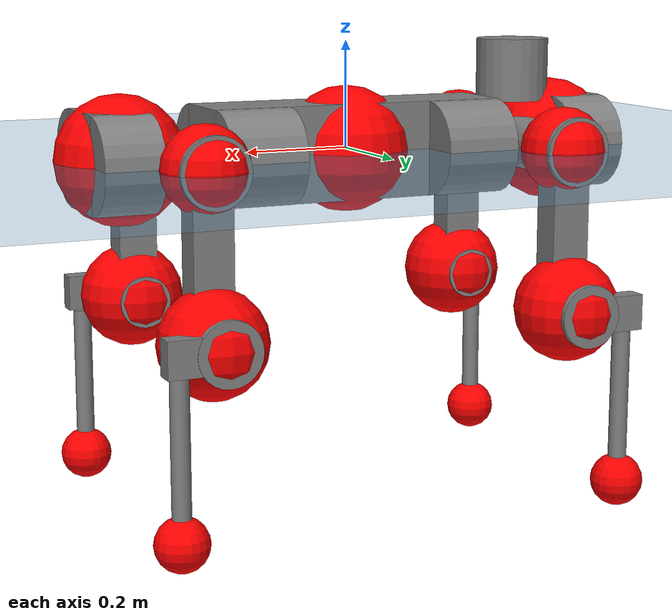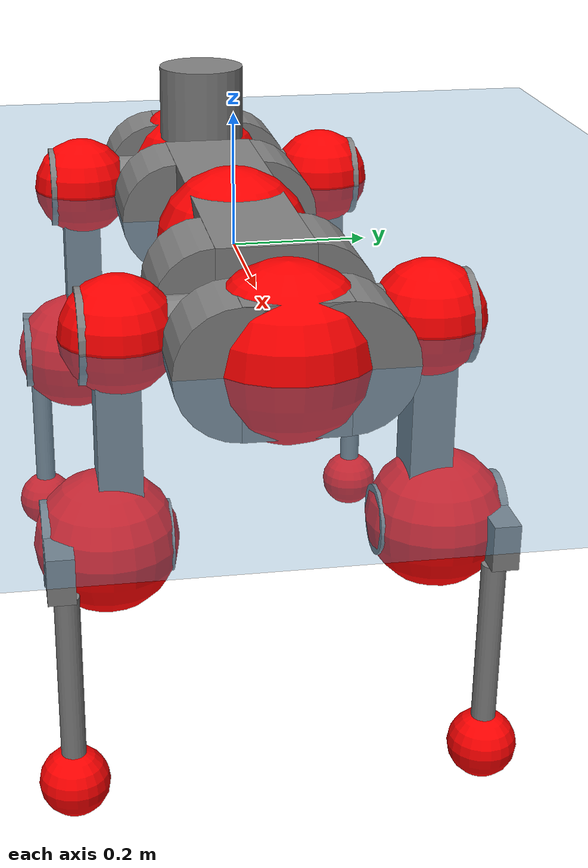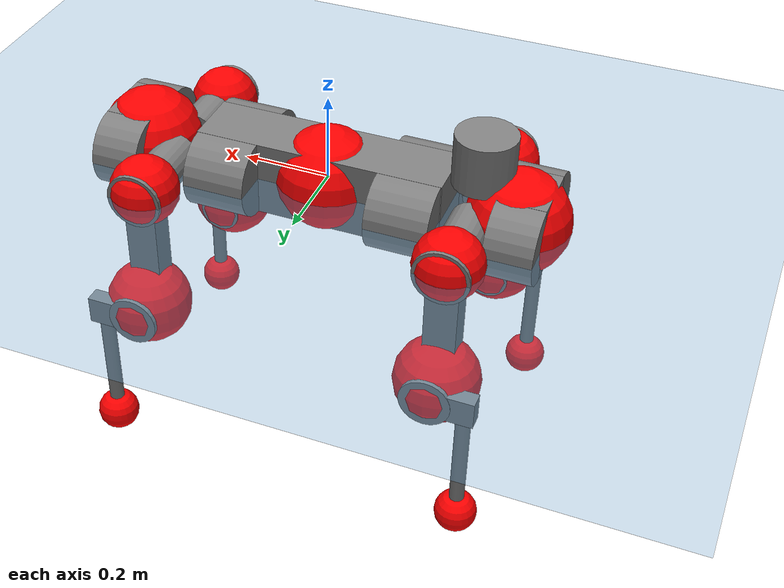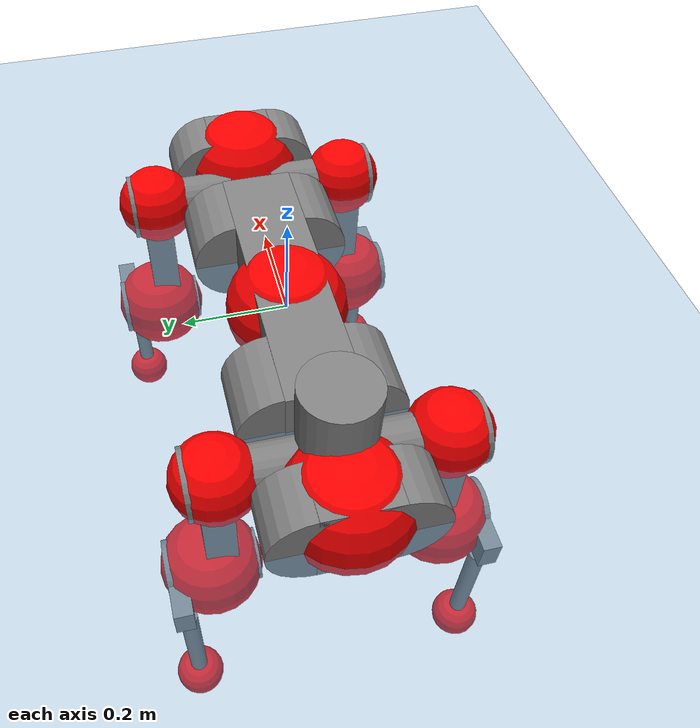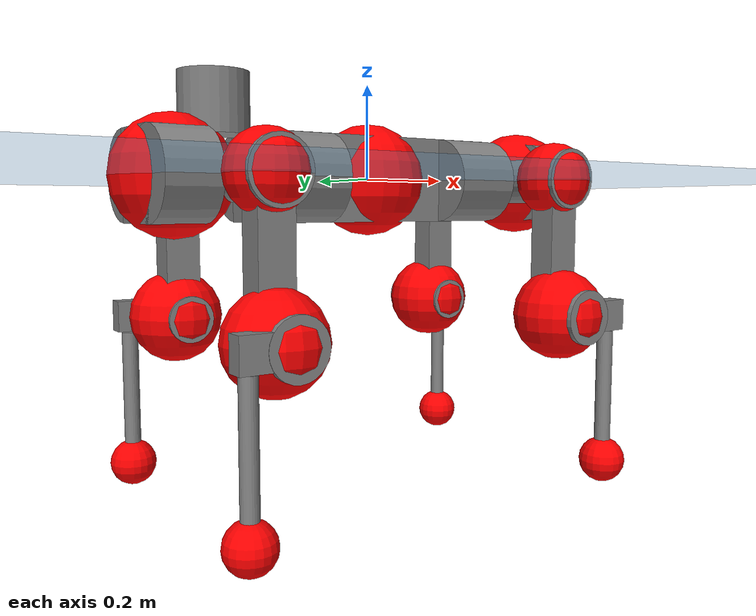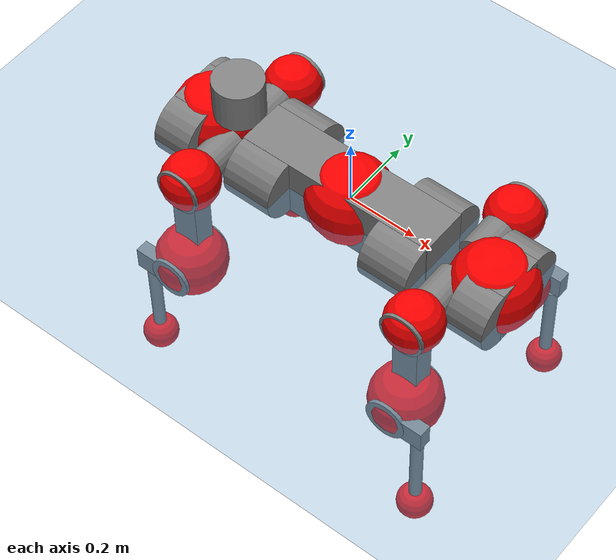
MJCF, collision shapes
<mujoco model="anymal_c">
  <compiler angle="radian" assetdir="assets" balanceinertia="true" inertiafromgeom="false"/>

  <option timestep="0.005" density="1.2" viscosity="2e-05"/>

  <size nkey="1"/>

  <visual>
    <quality shadowsize="8192"/>
    <map shadowclip="0.5"/>
  </visual>

  <default>
    <default class="/">
      <material specular="0" shininess="0.25"/>
      <geom contype="0" conaffinity="0" group="1" solref="-1000 -80"/>
      <site size="0.01 0.005 0.005" group="5"/>
      <general forcelimited="true" forcerange="-80 80" biastype="affine" gainprm="80" biasprm="0 -80 -2"/>
      <default class="anymal_c">
        <joint armature="0.01" damping="0.01" frictionloss="0.1"/>
        <default class="visual">
          <geom type="mesh" group="2"/>
          <default class="visual_zflip"/>
        </default>
        <default class="collision">
          <geom type="cylinder" group="3"/>
          <default class="foot">
            <geom size="0.03 0 0" type="sphere" condim="6" priority="1" friction="0.8 0.02 0.01" solimp="0.015 1 0.03"/>
          </default>
        </default>
      </default>
      <default class="reward_collision_sphere">
        <geom group="5" rgba="1 0 0 1"/>
      </default>
    </default>
  </default>

  <asset>
    <texture type="skybox" colorspace="auto" name="//unnamed_texture_0" builtin="gradient" rgb1="0.95 0.95 0.95" rgb2="0.95 0.95 0.95" width="100" height="600"/>
    <texture type="2d" colorspace="auto" name="texplane" builtin="checker" rgb1="0.345 0.575 0.748" rgb2="0.345 0.575 0.748" markrgb="1 1 1" width="512" height="512"/>
    <texture type="2d" colorspace="linear" name="base" file="base.png"/>
    <texture type="2d" colorspace="linear" name="top_shell" file="top_shell.png"/>
    <texture type="2d" colorspace="linear" name="bottom_shell" file="bottom_shell.png"/>
    <texture type="2d" colorspace="linear" name="remote" file="remote.png"/>
    <texture type="2d" colorspace="linear" name="hatch" file="hatch.png"/>
    <texture type="2d" colorspace="linear" name="handle" file="handle.png"/>
    <texture type="2d" colorspace="linear" name="face" file="face.png"/>
    <texture type="2d" colorspace="linear" name="battery" file="battery.png"/>
    <texture type="2d" colorspace="linear" name="lidar_cage" file="lidar_cage.png"/>
    <texture type="2d" colorspace="linear" name="depth_camera" file="depth_camera.png"/>
    <texture type="2d" colorspace="linear" name="wide_angle_camera" file="wide_angle_camera.png"/>
    <texture type="2d" colorspace="linear" name="lidar" file="lidar.png"/>
    <texture type="2d" colorspace="linear" name="drive" file="drive.png"/>
    <texture type="2d" colorspace="linear" name="hip_l" file="hip_l.png"/>
    <texture type="2d" colorspace="linear" name="shank_l" file="shank_l.png"/>
    <texture type="2d" colorspace="linear" name="foot" file="foot.png"/>
    <texture type="2d" colorspace="linear" name="thigh" file="thigh.png"/>
    <texture type="2d" colorspace="linear" name="shank_r" file="shank_r.png"/>
    <texture type="2d" colorspace="linear" name="hip_r" file="hip_r.png"/>
    <material name="MatPlane" class="/" texture="texplane" texuniform="true" texrepeat="2 2" specular="0.9" shininess="0.5"/>
    <material name="black_plastic" class="/" rgba="0.007 0.007 0.007 1"/>
    <material name="green" class="/" rgba="0.052 0.178 0.033 1"/>
    <material name="red" class="/" rgba="0.178 0.006 0.005 1"/>
    <material name="yellow" class="/" rgba="0.178 0.119 0.006 1"/>
    <material name="lwl" class="/" rgba="0.8 0.8 0.8 1"/>
    <material name="base" class="/" texture="base"/>
    <material name="top_shell" class="/" texture="top_shell"/>
    <material name="bottom_shell" class="/" texture="bottom_shell"/>
    <material name="hip_l" class="/" texture="hip_l"/>
    <material name="thigh" class="/" texture="thigh"/>
    <material name="shank_l" class="/" texture="shank_l"/>
    <material name="foot" class="/" texture="foot"/>
    <material name="hip_r" class="/" texture="hip_r"/>
    <material name="shank" class="/" texture="shank_r"/>
    <material name="hatch" class="/" texture="hatch"/>
    <material name="remote" class="/" texture="remote"/>
    <material name="handle" class="/" texture="handle"/>
    <material name="face" class="/" texture="face"/>
    <material name="depth_camera" class="/" texture="depth_camera"/>
    <material name="wide_angle_camera" class="/" texture="wide_angle_camera"/>
    <material name="battery" class="/" texture="battery"/>
    <material name="lidar_cage" class="/" texture="lidar_cage"/>
    <material name="lidar" class="/" texture="lidar"/>
    <material name="drive" class="/" texture="drive"/>
    <mesh name="base_0" class="/" file="base_0.obj"/>
    <mesh name="base_1" class="/" file="base_1.obj"/>
    <mesh name="base_2" class="/" file="base_2.obj"/>
    <mesh name="base_3" class="/" file="base_3.obj"/>
    <mesh name="base_4" class="/" file="base_4.obj"/>
    <mesh name="base_5" class="/" file="base_5.obj"/>
    <mesh name="top_shell" class="/" file="top_shell.obj"/>
    <mesh name="bottom_shell" class="/" file="bottom_shell.obj"/>
    <mesh name="remote" class="/" file="remote.obj"/>
    <mesh name="handle" class="/" file="handle.obj"/>
    <mesh name="face" class="/" file="face.obj"/>
    <mesh name="wide_angle_camera" class="/" file="wide_angle_camera.obj"/>
    <mesh name="depth_camera" class="/" file="depth_camera.obj"/>
    <mesh name="battery" class="/" file="battery.obj"/>
    <mesh name="lidar_cage" class="/" file="lidar_cage.obj"/>
    <mesh name="lidar" class="/" file="lidar.obj"/>
    <mesh name="drive" class="/" file="drive.obj"/>
    <mesh name="hip_l" class="/" file="hip_l.obj"/>
    <mesh name="thigh" class="/" file="thigh.obj"/>
    <mesh name="shank_l" class="/" file="shank_l.obj"/>
    <mesh name="foot" class="/" file="foot.obj"/>
    <mesh name="hip_r" class="/" file="hip_r.obj"/>
    <mesh name="hatch" class="/" file="hatch.obj"/>
    <mesh name="shank_r" class="/" file="shank_r.obj"/>
  </asset>

  <worldbody>
    <geom name="floor" class="/" size="100 100 0.125" type="plane" group="0" material="MatPlane"/>
    <light name="toplight_shadow" class="/" pos="0 0 5" dir="0.0990148 0.0990148 -0.990148" type="directional" ambient="0.04 0.04 0.04" diffuse="0.55 0.55 0.55" specular="0.12 0.12 0.12"/>
    <light name="toplight_fill" class="/" pos="0 0 5" dir="0.0990148 0.0990148 -0.990148" type="directional" castshadow="false" ambient="0.04 0.04 0.04" diffuse="0.3 0.3 0.3" specular="0.08 0.08 0.08"/>
    <body name="trunk" childclass="anymal_c" pos="0.000402434 0.000169645 -0.00117058" quat="1 9.97766e-05 -0.000343829 -0.000155422">
      <inertial pos="0.00209337 -0.000173249 0.0529485" quat="0.500347 0.497663 0.499921 0.502059" mass="18.9457" diaginertia="0.583105 0.484037 0.268273"/>
      <joint name="//unnamed_joint_0" type="free" armature="0" damping="0" frictionloss="0"/>
      <geom name="//unnamed_geom_1" class="visual" material="green" mesh="base_0"/>
      <geom name="//unnamed_geom_2" class="visual" material="yellow" mesh="base_1"/>
      <geom name="//unnamed_geom_3" class="visual" material="red" mesh="base_2"/>
      <geom name="//unnamed_geom_4" class="visual" material="black_plastic" mesh="base_3"/>
      <geom name="//unnamed_geom_5" class="visual" material="lwl" mesh="base_4"/>
      <geom name="//unnamed_geom_6" class="visual" material="base" mesh="base_5"/>
      <geom name="trunk_1" class="collision" size="0.286989 0.0692732 0.0890655" type="box"/>
      <geom name="trunk_2" class="collision" size="0.0890655 0.0717472" pos="0.213056 0.0664043 0" quat="0.707107 0 0.707107 0"/>
      <geom name="trunk_3" class="collision" size="0.0890655 0.0717472" pos="-0.213056 0.0664043 0" quat="0.707107 0 0.707107 0"/>
      <geom name="trunk_4" class="collision" size="0.0890655 0.0717472" pos="0.213056 -0.0664043 0" quat="0.707107 0 0.707107 0"/>
      <geom name="trunk_5" class="collision" size="0.0890655 0.0717472" pos="-0.213056 -0.0664043 0" quat="0.707107 0 0.707107 0"/>
      <geom name="//unnamed_geom_12" class="visual" material="top_shell" mesh="top_shell"/>
      <geom name="//unnamed_geom_13" class="visual" material="bottom_shell" mesh="bottom_shell"/>
      <geom name="//unnamed_geom_14" class="visual" material="remote" mesh="remote"/>
      <geom name="//unnamed_geom_15" class="visual" material="handle" mesh="handle"/>
      <geom name="//unnamed_geom_16" class="visual" pos="0.406031 0 0" quat="1 0 0 0" material="face" mesh="face"/>
      <geom name="trunk_6" class="collision" size="0.0544289 0.0692732 0.0890655" pos="0.459908 0 0" type="box"/>
      <geom name="//unnamed_geom_18" class="collision" size="0.0890655 0.0544289" pos="0.459908 0.0664043 0" quat="0.707107 0 0.707107 0"/>
      <geom name="//unnamed_geom_19" class="collision" size="0.0890655 0.0544289" pos="0.459908 -0.0664043 0" quat="0.707107 0 0.707107 0"/>
      <geom name="//unnamed_geom_20" class="visual" pos="0.452221 0 -0.0308512" quat="0.965926 0 0.258819 0" material="depth_camera" mesh="depth_camera"/>
      <geom name="//unnamed_geom_21" class="visual" pos="0.502519 0 0.0155785" material="wide_angle_camera" mesh="wide_angle_camera"/>
      <geom name="//unnamed_geom_22" class="visual_zflip" pos="-0.406031 0 0" quat="0 0 0 1" material="face" mesh="face"/>
      <geom name="trunk_7" class="collision" size="0.0544289 0.0692732 0.0890655" pos="-0.459908 0 0" quat="0 0 0 1" type="box"/>
      <geom name="//unnamed_geom_24" class="collision" size="0.0890655 0.0544289" pos="-0.459908 -0.0664043 0" quat="0 -0.707107 0 0.707107"/>
      <geom name="//unnamed_geom_25" class="collision" size="0.0890655 0.0544289" pos="-0.459908 0.0664043 0" quat="0 -0.707107 0 0.707107"/>
      <geom name="//unnamed_geom_26" class="visual" pos="-0.452221 0 -0.0308512" quat="0 -0.258819 0 0.965926" material="depth_camera" mesh="depth_camera"/>
      <geom name="//unnamed_geom_27" class="visual_zflip" pos="-0.502519 0 0.0155785" quat="0 0 0 1" material="wide_angle_camera" mesh="wide_angle_camera"/>
      <geom name="//unnamed_geom_28" class="visual" material="battery" mesh="battery"/>
      <geom name="//unnamed_geom_29" class="visual" pos="0 0.072129 0.0297666" quat="0.683013 -0.183013 0.183013 0.683013" material="depth_camera" mesh="depth_camera"/>
      <geom name="//unnamed_geom_30" class="visual" pos="0 -0.072129 0.0297666" quat="0.683013 0.183013 0.183013 -0.683013" material="depth_camera" mesh="depth_camera"/>
      <geom name="//unnamed_geom_31" class="visual" pos="-0.356563 0 0.0764877" quat="1 0 0 0" material="lidar_cage" mesh="lidar_cage"/>
      <geom name="trunk_8" class="collision" size="0.0692732 0.059377" pos="-0.356563 0 0.138927"/>
      <geom name="//unnamed_geom_33" class="visual" pos="-0.356563 -1.21542e-05 0.14798" quat="0.707107 0 0 -0.707107" material="lidar" mesh="lidar"/>
      <geom name="//unnamed_geom_34" class="visual" pos="0.293773 0.0986905 -1.5873e-09" quat="0.258819 0.965926 0 0" material="drive" mesh="drive"/>
      <geom name="//unnamed_geom_35" class="visual" pos="0.293773 -0.0986905 1.5873e-09" quat="0.258819 -0.965926 0 0" material="drive" mesh="drive"/>
      <geom name="//unnamed_geom_36" class="visual" pos="-0.293773 0.0986905 1.5873e-09" quat="0 0 0.965926 -0.258819" material="drive" mesh="drive"/>
      <geom name="//unnamed_geom_37" class="visual" pos="-0.293773 -0.0986905 -1.5873e-09" quat="0 0 -0.965926 -0.258819" material="drive" mesh="drive"/>
      <geom name="//unnamed_geom_38" class="visual" pos="0.11363 0 0.0759674" quat="1 0 0 0" material="hatch" mesh="hatch"/>
      <geom name="//unnamed_geom_39" class="reward_collision_sphere" size="0.118754"/>
      <geom name="//unnamed_geom_40" class="reward_collision_sphere" size="0.118754" pos="0.440806 0 0"/>
      <geom name="//unnamed_geom_41" class="reward_collision_sphere" size="0.118754" pos="-0.440806 0 0"/>
      <site name="imu" pos="0.246088 0.00341222 0.0491733" size="0.00989617"/>
      <camera name="track" pos="0 -1.89726 0" quat="0.707107 0.707107 0 0" mode="trackcom"/>
      <camera name="ego_camera" pos="0.440806 0 -0.041626" quat="-0.5 -0.5 0.5 0.5"/>
      <body name="LF_HIP" pos="0.294394 0.0982484 -0.000114274" quat="0.258813 0.965927 -1.3846e-05 9.90915e-06">
        <inertial pos="0.0549937 -0.0140277 -0.009633" quat="-0.130223 0.706616 -0.138199 0.681643" mass="2.72251" diaginertia="0.00531486 0.00382573 0.00406138"/>
        <joint name="LF_HAA" pos="0 0 0" axis="0.999999 0.00156586 -0.000600893" range="-0.722047 0.470631" armature="0.00992747" damping="0.0124517" frictionloss="0.0942712"/>
        <geom name="//unnamed_geom_42" class="visual" pos="0 -9.33735e-05 1.53365e-05" quat="0.258819 -0.965926 0 0" material="hip_l" mesh="hip_l"/>
        <geom name="//unnamed_geom_43" class="visual" pos="0.0586762 -0.070724 -0.0415131" quat="0.183013 -0.683013 0.683013 0.183013" material="drive" mesh="drive"/>
        <geom name="//unnamed_geom_44" class="collision" size="0.0494808 0.0692732" pos="0.0586762 -0.0113455 -0.00718568" quat="-0.353553 -0.612372 0.612372 -0.353553"/>
        <body name="LF_THIGH" pos="0.059201 -0.070161 -0.0435624" quat="0.182862 -0.683035 0.683025 0.183033">
          <inertial pos="0.0304122 0.000240143 -0.255308" quat="0.993204 -0.00567529 -0.0812877 0.0830961" mass="2.974" diaginertia="0.0273109 0.0228807 0.00508892"/>
          <joint name="LF_HFE" pos="0 0 0" axis="1 -3.8813e-05 -0.000515888" stiffness="0.00262272" range="-3.12461 3.13691" armature="0.010105" damping="0.00571337" frictionloss="0.0988064"/>
          <geom name="//unnamed_geom_45" class="visual" pos="0.000615519 9.69913e-07 0" quat="0.707107 0 0 -0.707107" material="thigh" mesh="thigh"/>
          <geom name="//unnamed_geom_46" class="collision" size="0.0643251 0.0395847" pos="0.0391828 0 0" quat="0.5 0.5 -0.5 -0.5"/>
          <geom name="//unnamed_geom_47" class="collision" size="0.0371106 0.0296885 0.139847" pos="0.0293871 0 -0.147058" quat="0.707107 0 0 -0.707107" type="box"/>
          <geom name="//unnamed_geom_48" class="visual" pos="0.0982508 0 -0.296585" quat="1 0 0 0" material="drive" mesh="drive"/>
          <geom name="//unnamed_geom_49" class="collision" size="0.0494808 0.0692732" pos="0.0296809 0 -0.296585" quat="0.707107 0 0.707107 0"/>
          <geom name="//unnamed_geom_50" class="reward_collision_sphere" size="0.0791693" pos="0.0244892 0 0"/>
          <body name="LF_SHANK" pos="0.0983792 -0.000761338 -0.296685" quat="1 1.29845e-05 -4.41143e-05 -4.22717e-05">
            <inertial pos="0.00376229 -0.0589794 -0.0840554" quat="0.992799 -0.117151 -0.00180937 -0.0249603" mass="0.573973" diaginertia="0.00912443 0.00713986 0.00136793"/>
            <joint name="LF_KFE" pos="0 0 0" axis="0.999998 -0.000884764 -0.00158924" range="-3.17006 3.1211" armature="0.00973831" damping="0.00762758" frictionloss="0.10542"/>
            <geom name="//unnamed_geom_51" class="visual" pos="0.000200707 0.00107018 0" quat="0.707107 0 0 -0.707107" material="shank_l" mesh="shank_l"/>
            <geom name="LF_kfe_act" class="collision" size="0.059377 0.0197923" pos="0.0195914 0 0" quat="0.5 0.5 -0.5 -0.5"/>
            <geom name="//unnamed_geom_53" class="collision" size="0.056902 0.0333996 0.0188027" pos="0.0195914 -0.0545454 0" quat="0.5 0.5 -0.5 -0.5" type="box"/>
            <geom name="//unnamed_geom_54" class="visual" pos="0.0127833 -0.0830873 -0.351708" quat="0.382683 0 0 -0.92388" material="foot" mesh="foot"/>
            <geom name="LF_calf" class="collision" size="0.0173183 0.139785" pos="0.0127834 -0.0834322 -0.175854" quat="0.707107 0 0 -0.707107"/>
            <geom name="LF_foot" class="foot" size="0.0295522" pos="0.0127834 -0.0834322 -0.328294" quat="0.707107 0 0 -0.707107"/>
            <geom name="//unnamed_geom_57" class="reward_collision_sphere" size="0.0989617" pos="-0.0489785 0 0"/>
            <geom name="//unnamed_geom_58" class="reward_collision_sphere" size="0.0494808" pos="0.0127834 -0.0834322 -0.328294"/>
            <site name="LF_foot" class="foot" pos="0.0127834 -0.0834322 -0.328294" quat="0.707107 0 0 -0.707107" size="0.00989617"/>
          </body>
        </body>
      </body>
      <body name="RF_HIP" pos="0.29514 -0.0994028 -0.000144178" quat="0.258595 -0.965986 -0.000545684 -0.000214805">
        <inertial pos="0.056295 0.0148695 -0.00899968" quat="0.130534 0.682362 0.126582 0.70804" mass="2.74472" diaginertia="0.00533311 0.00379644 0.00405105"/>
        <joint name="RF_HAA" pos="0 0 0" axis="0.999983 0.00395079 -0.00435867" range="-0.515914 0.739676" armature="0.00996674" damping="0.0148676" frictionloss="0.0951981"/>
        <geom name="//unnamed_geom_59" class="visual" pos="0 9.33727e-05 1.53365e-05" quat="0.258819 0.965926 0 0" material="hip_r" mesh="hip_r"/>
        <geom name="//unnamed_geom_60" class="visual" pos="0.0586762 0.070724 -0.0415131" quat="0.183013 0.683013 0.683013 -0.183013" material="drive" mesh="drive"/>
        <geom name="//unnamed_geom_61" class="collision" size="0.0494808 0.0692732" pos="0.0586762 0.0113455 -0.00718568" quat="-0.353553 0.612372 0.612372 0.353553"/>
        <body name="RF_THIGH" pos="0.0588192 0.0695992 -0.0434042" quat="0.18269 0.683202 0.68298 -0.182751">
          <inertial pos="0.0311579 0.000155768 -0.255462" quat="0.992764 -0.00515004 -0.0806075 0.0888608" mass="2.96393" diaginertia="0.0271573 0.0229607 0.00504988"/>
          <joint name="RF_HFE" pos="0 0 0" axis="1 -0.0001325 -0.000561166" stiffness="0.00305965" range="-3.13999 3.15765" armature="0.0103376" damping="0" frictionloss="0.0997125"/>
          <geom name="//unnamed_geom_62" class="visual" pos="0.000615519 9.69913e-07 0" quat="0.707107 0 0 -0.707107" material="thigh" mesh="thigh"/>
          <geom name="//unnamed_geom_63" class="collision" size="0.0643251 0.0395847" pos="0.0391828 0 0" quat="0.5 0.5 0.5 0.5"/>
          <geom name="//unnamed_geom_64" class="collision" size="0.0371106 0.0296885 0.139847" pos="0.0293871 0 -0.147058" quat="0.707107 0 0 0.707107" type="box"/>
          <geom name="//unnamed_geom_65" class="visual" pos="0.0982508 0 -0.296585" quat="1 0 0 0" material="drive" mesh="drive"/>
          <geom name="//unnamed_geom_66" class="collision" size="0.0494808 0.0692732" pos="0.0296809 0 -0.296585" quat="0.707107 0 0.707107 0"/>
          <geom name="//unnamed_geom_67" class="reward_collision_sphere" size="0.0791693" pos="0.0244892 0 0"/>
          <body name="RF_SHANK" pos="0.0969506 0.000416105 -0.296382" quat="1 -3.9858e-05 -0.000195799 6.05811e-06">
            <inertial pos="0.00526965 0.0575248 -0.0838783" quat="0.992782 0.118373 0.00126749 0.0192217" mass="0.561706" diaginertia="0.00911131 0.00706907 0.00136768"/>
            <joint name="RF_KFE" pos="0 0 0" axis="0.999992 0.00297389 0.00280448" stiffness="0.000191667" range="-3.13695 3.12889" armature="0.00980743" damping="0.00774265" frictionloss="0.103572"/>
            <geom name="//unnamed_geom_68" class="visual" pos="0.000200706 -0.00107018 0" quat="0.707107 0 0 0.707107" material="shank" mesh="shank_r"/>
            <geom name="RF_kfe_act" class="collision" size="0.059377 0.0197923" pos="0.0195914 0 0" quat="0.5 0.5 0.5 0.5"/>
            <geom name="//unnamed_geom_70" class="collision" size="0.056902 0.0333996 0.0188027" pos="0.0195914 0.0545454 0" quat="0.5 0.5 0.5 0.5" type="box"/>
            <geom name="//unnamed_geom_71" class="visual" pos="0.0127834 0.0830873 -0.351708" quat="0.382683 0 0 0.92388" material="foot" mesh="foot"/>
            <geom name="RF_calf" class="collision" size="0.0173183 0.139785" pos="0.0127834 0.0834322 -0.175854" quat="0.707107 0 0 0.707107"/>
            <geom name="RF_foot" class="foot" size="0.0293005" pos="0.0127834 0.0834322 -0.328294" quat="0.707107 0 0 0.707107"/>
            <geom name="//unnamed_geom_74" class="reward_collision_sphere" size="0.0989617" pos="-0.0489785 0 0"/>
            <geom name="//unnamed_geom_75" class="reward_collision_sphere" size="0.0494808" pos="0.0127834 0.0834322 -0.328294"/>
            <site name="RF_foot" class="foot" pos="0.0127834 0.0834322 -0.328294" quat="0.707107 0 0 0.707107" size="0.00989617"/>
          </body>
        </body>
      </body>
      <body name="LH_HIP" pos="-0.293491 0.0992414 0.000392134" quat="8.0272e-05 -0.00012333 0.965951 -0.258723">
        <inertial pos="0.0558023 0.0136179 -0.00994716" quat="0.132185 0.680333 0.128435 0.70935" mass="2.71599" diaginertia="0.00540582 0.00378838 0.00407427"/>
        <joint name="LH_HAA" pos="0 0 0" axis="0.999993 -0.0030807 -0.00230511" range="-0.502605 0.73776" armature="0.00998614" damping="0.00757837" frictionloss="0.0996615"/>
        <geom name="//unnamed_geom_76" class="visual" pos="0 9.33727e-05 1.53365e-05" quat="-0.258819 -0.965926 0 0" material="hip_r" mesh="hip_r"/>
        <geom name="//unnamed_geom_77" class="visual" pos="0.0586762 0.070724 -0.0415131" quat="0.183013 0.683013 0.683013 -0.183013" material="drive" mesh="drive"/>
        <geom name="//unnamed_geom_78" class="collision" size="0.0494808 0.0692732" pos="0.0586762 0.0113455 -0.00718568" quat="-0.353553 0.612372 0.612372 0.353553"/>
        <body name="LH_THIGH" pos="0.0582817 0.0685048 -0.0422481" quat="0.183019 0.683014 0.683011 -0.183006">
          <inertial pos="0.0316943 0.000306336 -0.256819" quat="0.992799 -0.00523592 -0.080546 0.0885137" mass="3.04546" diaginertia="0.0280938 0.0235559 0.00516643"/>
          <joint name="LH_HFE" pos="0 0 0" axis="0.99998 -0.00631733 0.000479679" range="-3.12744 3.13397" armature="0.00979238" damping="0.000432638" frictionloss="0.0946733"/>
          <geom name="//unnamed_geom_79" class="visual" pos="0.000615519 9.69913e-07 0" quat="0.707107 0 0 -0.707107" material="thigh" mesh="thigh"/>
          <geom name="//unnamed_geom_80" class="collision" size="0.0643251 0.0395847" pos="0.0391828 0 0" quat="0.5 0.5 -0.5 -0.5"/>
          <geom name="//unnamed_geom_81" class="collision" size="0.0371106 0.0296885 0.139847" pos="0.0293871 0 -0.147058" quat="0.707107 0 0 -0.707107" type="box"/>
          <geom name="//unnamed_geom_82" class="visual" pos="0.0982508 0 -0.296585" quat="1 0 0 0" material="drive" mesh="drive"/>
          <geom name="//unnamed_geom_83" class="collision" size="0.0494808 0.0692732" pos="0.0296809 0 -0.296585" quat="0.707107 0 0.707107 0"/>
          <geom name="//unnamed_geom_84" class="reward_collision_sphere" size="0.0791693" pos="0.0244892 0 0"/>
          <body name="LH_SHANK" pos="0.0987859 -0.000555072 -0.297418" quat="1 1.84928e-05 -2.61806e-05 -8.42819e-05">
            <inertial pos="0.00428239 0.0573129 -0.0852831" quat="0.993097 0.114687 0.00150473 0.0245445" mass="0.571869" diaginertia="0.0092139 0.00722786 0.00136103"/>
            <joint name="LH_KFE" pos="0 0 0" axis="0.999999 -0.00167308 -0.000409448" range="-3.13478 3.10973" armature="0.0101691" damping="7.0368e-05" frictionloss="0.0995081"/>
            <geom name="//unnamed_geom_85" class="visual" pos="0.000200706 -0.00107018 0" quat="-0.707107 0 0 -0.707107" material="shank" mesh="shank_r"/>
            <geom name="LH_kfe_act" class="collision" size="0.059377 0.0197923" pos="0.0195914 0 0" quat="0.5 0.5 -0.5 -0.5"/>
            <geom name="//unnamed_geom_87" class="collision" size="0.056902 0.0333996 0.0188027" pos="0.0195914 0.0545454 0" quat="0.5 0.5 -0.5 -0.5" type="box"/>
            <geom name="//unnamed_geom_88" class="visual" pos="0.0127834 0.0830873 -0.351708" quat="-0.382683 0 0 -0.92388" material="foot" mesh="foot"/>
            <geom name="LH_calf" class="collision" size="0.0173183 0.139785" pos="0.0127834 0.0834322 -0.175854" quat="0.707107 0 0 -0.707107"/>
            <geom name="LH_foot" class="foot" size="0.03006" pos="0.0127834 0.0834322 -0.328294" quat="0.707107 0 0 -0.707107"/>
            <geom name="//unnamed_geom_91" class="reward_collision_sphere" size="0.0989617" pos="-0.0489785 0 0"/>
            <geom name="//unnamed_geom_92" class="reward_collision_sphere" size="0.0494808" pos="0.0127834 0.0834322 -0.328294"/>
            <site name="LH_foot" class="foot" pos="0.0127834 0.0834322 -0.328294" quat="0.707107 0 0 -0.707107" size="0.00989617"/>
          </body>
        </body>
      </body>
      <body name="RH_HIP" pos="-0.292237 -0.0984852 0.000393011" quat="-4.04905e-05 -5.89711e-05 -0.965908 -0.258884">
        <inertial pos="0.0555657 -0.0137508 -0.00887427" quat="-0.128803 0.711421 -0.137026 0.677136" mass="2.68034" diaginertia="0.00542022 0.00382681 0.00402672"/>
        <joint name="RH_HAA" pos="0 0 0" axis="0.999959 0.00429131 0.00802281" range="-0.703852 0.491412" armature="0.00991297" damping="0.0101874" frictionloss="0.106248"/>
        <geom name="//unnamed_geom_93" class="visual" pos="0 -9.33735e-05 1.53365e-05" quat="-0.258819 0.965926 0 0" material="hip_l" mesh="hip_l"/>
        <geom name="//unnamed_geom_94" class="visual" pos="0.0586762 -0.070724 -0.0415131" quat="-0.183013 0.683013 -0.683013 -0.183013" material="drive" mesh="drive"/>
        <geom name="//unnamed_geom_95" class="collision" size="0.0494808 0.0692732" pos="0.0586762 -0.0113455 -0.00718568" quat="0.353553 0.612372 -0.612372 0.353553"/>
        <body name="RH_THIGH" pos="0.0583344 -0.0689242 -0.0431707" quat="-0.182866 0.683208 -0.682902 -0.182842">
          <inertial pos="0.0295318 0.000943495 -0.255897" quat="0.992897 -0.00275975 -0.0831688 0.0850349" mass="2.93302" diaginertia="0.0274533 0.0229788 0.00513895"/>
          <joint name="RH_HFE" pos="0 0 0" axis="0.999992 0.00364095 0.00141562" range="-3.14066 3.1493" armature="0.0100284" damping="0.013735" frictionloss="0.0986339"/>
          <geom name="//unnamed_geom_96" class="visual" pos="0.000615519 9.69913e-07 0" quat="0.707107 0 0 -0.707107" material="thigh" mesh="thigh"/>
          <geom name="//unnamed_geom_97" class="collision" size="0.0643251 0.0395847" pos="0.0391828 0 0" quat="0.5 0.5 0.5 0.5"/>
          <geom name="//unnamed_geom_98" class="collision" size="0.0371106 0.0296885 0.139847" pos="0.0293871 0 -0.147058" quat="0.707107 0 0 0.707107" type="box"/>
          <geom name="//unnamed_geom_99" class="visual" pos="0.0982508 0 -0.296585" quat="1 0 0 0" material="drive" mesh="drive"/>
          <geom name="//unnamed_geom_100" class="collision" size="0.0494808 0.0692732" pos="0.0296809 0 -0.296585" quat="0.707107 0 0.707107 0"/>
          <geom name="//unnamed_geom_101" class="reward_collision_sphere" size="0.0791693" pos="0.0244892 0 0"/>
          <body name="RH_SHANK" pos="0.0968253 -4.01092e-05 -0.296548" quat="1 -0.000404267 0.00052556 0.00028174">
            <inertial pos="0.00502385 -0.0581727 -0.0841096" quat="0.993133 -0.114782 -0.00213455 -0.0225154" mass="0.560861" diaginertia="0.00900987 0.00693756 0.00133769"/>
            <joint name="RH_KFE" pos="0 0 0" axis="0.99994 0.0061598 0.00903172" range="-3.11545 3.13192" armature="0.0100029" damping="0.00212153" frictionloss="0.0989555"/>
            <geom name="//unnamed_geom_102" class="visual" pos="0.000200707 0.00107018 0" quat="0.707107 0 0 -0.707107" material="shank_l" mesh="shank_l"/>
            <geom name="RH_kfe_act" class="collision" size="0.059377 0.0197923" pos="0.0195914 0 0" quat="0.5 0.5 0.5 0.5"/>
            <geom name="//unnamed_geom_104" class="collision" size="0.056902 0.0333996 0.0188027" pos="0.0195914 -0.0545454 0" quat="0.5 0.5 0.5 0.5" type="box"/>
            <geom name="//unnamed_geom_105" class="visual" pos="0.0127833 -0.0830873 -0.351708" quat="0.382683 0 0 -0.92388" material="foot" mesh="foot"/>
            <geom name="RH_calf" class="collision" size="0.0173183 0.139785" pos="0.0127834 -0.0834322 -0.175854" quat="0.707107 0 0 0.707107"/>
            <geom name="RH_foot" class="foot" size="0.0295603" pos="0.0127834 -0.0834322 -0.328294" quat="0.707107 0 0 0.707107"/>
            <geom name="//unnamed_geom_108" class="reward_collision_sphere" size="0.0989617" pos="-0.0489785 0 0"/>
            <geom name="//unnamed_geom_109" class="reward_collision_sphere" size="0.0494808" pos="0.0127834 -0.0834322 -0.328294"/>
            <site name="RH_foot" class="foot" pos="0.0127834 -0.0834322 -0.328294" quat="0.707107 0 0 0.707107" size="0.00989617"/>
          </body>
        </body>
      </body>
    </body>
  </worldbody>

  <contact>
    <pair class="/" geom1="floor" geom2="LF_foot" name="//unnamed_contact_0"/>
    <pair class="/" geom1="floor" geom2="RF_foot" name="//unnamed_contact_1"/>
    <pair class="/" geom1="floor" geom2="LH_foot" name="//unnamed_contact_2"/>
    <pair class="/" geom1="floor" geom2="RH_foot" name="//unnamed_contact_3"/>
  </contact>

  <actuator>
    <general name="LF_HAA" class="/" joint="LF_HAA" forcerange="-79.1698 79.1698" gainprm="80.5623" biasprm="0 -80.5623 -1.97577"/>
    <general name="LF_HFE" class="/" joint="LF_HFE" forcerange="-80.4395 80.4395" gainprm="80.5623" biasprm="0 -80.5623 -1.97577"/>
    <general name="LF_KFE" class="/" joint="LF_KFE" forcerange="-76.8383 76.8383" gainprm="80.5623" biasprm="0 -80.5623 -1.97577"/>
    <general name="RF_HAA" class="/" joint="RF_HAA" forcerange="-78.1994 78.1994" gainprm="80.5623" biasprm="0 -80.5623 -1.97577"/>
    <general name="RF_HFE" class="/" joint="RF_HFE" forcerange="-77.4679 77.4679" gainprm="80.5623" biasprm="0 -80.5623 -1.97577"/>
    <general name="RF_KFE" class="/" joint="RF_KFE" forcerange="-78.7123 78.7123" gainprm="80.5623" biasprm="0 -80.5623 -1.97577"/>
    <general name="LH_HAA" class="/" joint="LH_HAA" forcerange="-79.2664 79.2664" gainprm="80.5623" biasprm="0 -80.5623 -1.97577"/>
    <general name="LH_HFE" class="/" joint="LH_HFE" forcerange="-76.5421 76.5421" gainprm="80.5623" biasprm="0 -80.5623 -1.97577"/>
    <general name="LH_KFE" class="/" joint="LH_KFE" forcerange="-82.0723 82.0723" gainprm="80.5623" biasprm="0 -80.5623 -1.97577"/>
    <general name="RH_HAA" class="/" joint="RH_HAA" forcerange="-79.5024 79.5024" gainprm="80.5623" biasprm="0 -80.5623 -1.97577"/>
    <general name="RH_HFE" class="/" joint="RH_HFE" forcerange="-80.644 80.644" gainprm="80.5623" biasprm="0 -80.5623 -1.97577"/>
    <general name="RH_KFE" class="/" joint="RH_KFE" forcerange="-76.6921 76.6921" gainprm="80.5623" biasprm="0 -80.5623 -1.97577"/>
  </actuator>

  <sensor>
    <gyro site="imu" name="imu_angular_velocity"/>
    <velocimeter site="imu" name="imu_linear_velocity"/>
    <framelinvel objtype="site" objname="LF_foot" name="LF_foot_global_linear_velocity"/>
    <framelinvel objtype="site" objname="RF_foot" name="RF_foot_global_linear_velocity"/>
    <framelinvel objtype="site" objname="LH_foot" name="LH_foot_global_linear_velocity"/>
    <framelinvel objtype="site" objname="RH_foot" name="RH_foot_global_linear_velocity"/>
  </sensor>

  <keyframe>
    <key name="home" qpos="0 0 0.55 1 0 0 0 0 0.4 -0.8 0 -0.4 0.8 0 -0.4 0.8 0 0.4 -0.8"/>
  </keyframe>
</mujoco>
